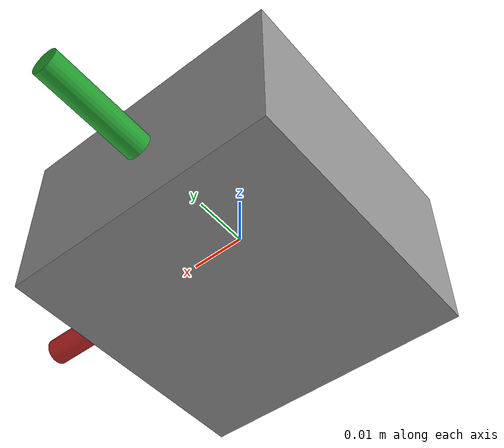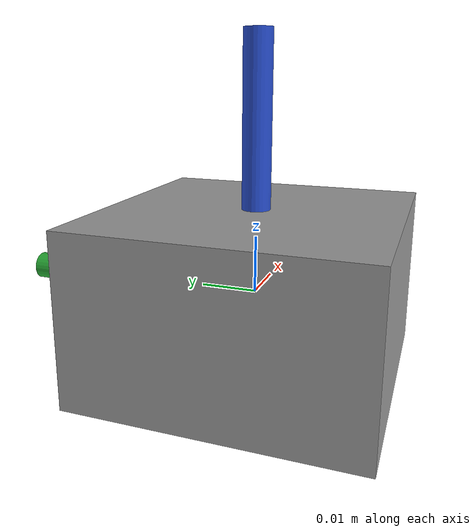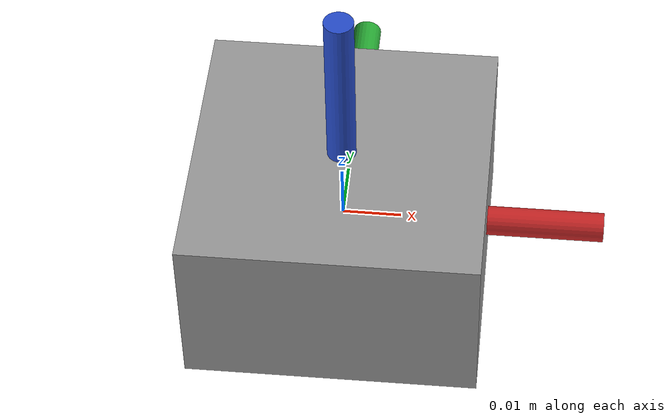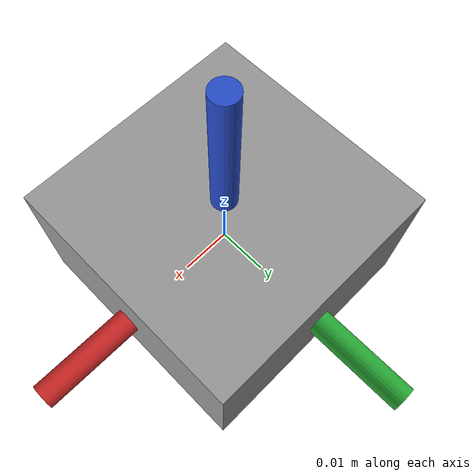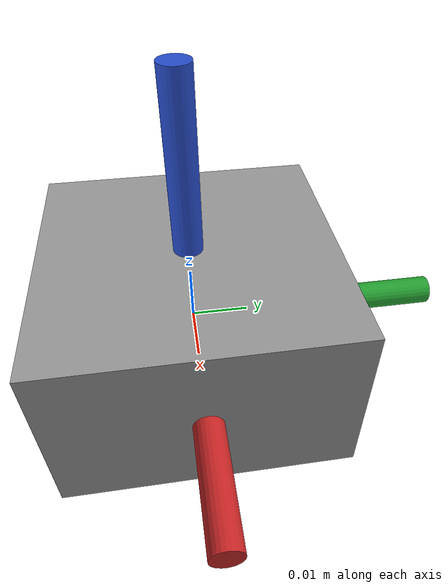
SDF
<?xml version='1.0'?>
<sdf version='1.6'>
  <model name='imubox'>
    <link name='link'>
      <inertial>
        <mass>1</mass>
        <inertia>
          <ixx>0.166667</ixx>
          <ixy>0</ixy>
          <ixz>0</ixz>
          <iyy>0.166667</iyy>
          <iyz>0</iyz>
          <izz>0.166667</izz>
        </inertia>
        <pose frame=''>0 0 0 0 -0 0</pose>
      </inertial>
      <enable_wind>0</enable_wind>
      <kinematic>0</kinematic>
      <pose frame=''>0 0 0 0 -0 0</pose>
      <gravity>0</gravity>
      <visual name='visual'>
        <geometry>
          <box>
            <size>0.05 0.05 0.03</size>
          </box>
        </geometry>
        <material>
          <script>
            <name>Gazebo/Grey</name>
            <uri>file://media/materials/scripts/gazebo.material</uri>
          </script>
          <shader type='vertex'>
            <normal_map>__default__</normal_map>
          </shader>
          <ambient>0.8 0.8 0.8 1</ambient>
          <diffuse>0.7 0.7 0.7 1</diffuse>
          <specular>0.01 0.01 0.01 1</specular>
          <emissive>0 0 0 1</emissive>
        </material>
        <pose frame=''>0 0 0 0 -0 0</pose>
        <transparency>0</transparency>
        <cast_shadows>1</cast_shadows>
      </visual>

    </link>
    <link name='link_0'>
      <inertial>
        <mass>1</mass>
        <inertia>
          <ixx>0.145833</ixx>
          <ixy>0</ixy>
          <ixz>0</ixz>
          <iyy>0.145833</iyy>
          <iyz>0</iyz>
          <izz>0.125</izz>
        </inertia>
        <pose frame=''>0 0 0 0 1.57 -0.01</pose>
      </inertial>
      <pose frame=''>0 0 0.015 0 -0 0</pose>
      <gravity>0</gravity>
      <kinematic>0</kinematic>
      <enable_wind>0</enable_wind>
      <visual name='visual'>
        <pose frame=''>0 0 0 0 -0 0</pose>
        <geometry>
          <cylinder>
            <radius>0.0025</radius>
            <length>0.06</length>
          </cylinder>
        </geometry>
        <material>
          <lighting>1</lighting>
          <script>
            <uri>file://media/materials/scripts/gazebo.material</uri>
            <name>Gazebo/Blue</name>
          </script>
          <shader type='vertex'>
            <normal_map>__default__</normal_map>
          </shader>
          <ambient>0.0 0.0 1.0</ambient>
          <diffuse>0.0 0.0 1.0</diffuse>
          <specular>0.1 0.1 0.1 1.0 1.0</specular>
        </material>
        <transparency>0</transparency>
        <cast_shadows>1</cast_shadows>
      </visual>

    </link>
    <link name='link_0_clone'>
      <inertial>
        <mass>1</mass>
        <inertia>
          <ixx>0.145833</ixx>
          <ixy>0</ixy>
          <ixz>0</ixz>
          <iyy>0.145833</iyy>
          <iyz>0</iyz>
          <izz>0.125</izz>
        </inertia>
        <pose frame=''>0 0 0 0 1.57 0</pose>
      </inertial>
      <pose frame=''>0.015 0 0 0 1.57 0</pose>
      <gravity>0</gravity>
      <kinematic>0</kinematic>
      <enable_wind>0</enable_wind>
      <visual name='visual'>
        <pose frame=''>0 0 0 0 -0 0</pose>
        <geometry>
          <cylinder>
            <radius>0.0025</radius>
            <length>0.06</length>
          </cylinder>
        </geometry>
        <material>
          <lighting>1</lighting>
          <script>
            <uri>file://media/materials/scripts/gazebo.material</uri>
            <name>Gazebo/Red</name>
          </script>
          <shader type='vertex'>
            <normal_map>__default__</normal_map>
          </shader>
          <ambient>1.0 0.0 0.0 1</ambient>
          <diffuse>0.7 0.7 0.7 1</diffuse>
          <specular>0.01 0.01 0.01 1</specular>
          <emissive>0 0 0 1</emissive>
        </material>
        <transparency>0</transparency>
        <cast_shadows>1</cast_shadows>
      </visual>

    </link>
    <link name='link_0_clone_0'>
      <inertial>
        <mass>1</mass>
        <inertia>
          <ixx>0.145833</ixx>
          <ixy>0</ixy>
          <ixz>0</ixz>
          <iyy>0.145833</iyy>
          <iyz>0</iyz>
          <izz>0.125</izz>
        </inertia>
        <pose frame=''>0 0 0 0 1.57 0</pose>
      </inertial>
      <pose frame=''>0 0.015 0 1.57 -0 0</pose>
      <gravity>0</gravity>
      <self_collide>0</self_collide>
      <kinematic>0</kinematic>
      <enable_wind>0</enable_wind>
      <visual name='ModelPreview_9::link_0_clone_0::visual_3'>
        <pose frame=''>0 0 0 0 -0 0</pose>
        <geometry>
          <cylinder>
            <radius>0.0025</radius>
            <length>0.06</length>
          </cylinder>
        </geometry>
        <material>
          <lighting>1</lighting>
          <script>
            <uri>file://media/materials/scripts/gazebo.material</uri>
            <name>Gazebo/Green</name>
          </script>
          <shader type='vertex'>
            <normal_map>__default__</normal_map>
          </shader>
          <ambient>0.0 1.0 0.0 1</ambient>
          <diffuse>0.7 0.7 0.7 1</diffuse>
          <specular>0.01 0.01 0.01 1</specular>
          <emissive>0 0 0 1</emissive>
        </material>
        <transparency>0</transparency>
        <cast_shadows>1</cast_shadows>
      </visual>
      <visual name='ModelPreview_9::link_0_clone_0::visual_1'>
        <pose frame=''>0 0 0 0 -0 0</pose>
        <geometry>
          <cylinder>
            <radius>0.0025</radius>
            <length>0.06</length>
          </cylinder>
        </geometry>
        <material>
          <lighting>1</lighting>
          <script>
            <uri>file://media/materials/scripts/gazebo.material</uri>
            <name>Gazebo/Green</name>
          </script>
          <shader type='vertex'>
            <normal_map>__default__</normal_map>
          </shader>
          <ambient>0.0 1.0 0.0 1</ambient>
          <diffuse>0.7 0.7 0.7 1</diffuse>
          <specular>0.01 0.01 0.01 1</specular>
          <emissive>0 0 0 1</emissive>
        </material>
        <transparency>0</transparency>
        <cast_shadows>1</cast_shadows>
      </visual>
      <visual name='visual'>
        <pose frame=''>0 0 0 0 -0 0</pose>
        <geometry>
          <cylinder>
            <radius>0.0025</radius>
            <length>0.06</length>
          </cylinder>
        </geometry>
        <material>
          <lighting>1</lighting>
          <script>
            <uri>file://media/materials/scripts/gazebo.material</uri>
            <name>Gazebo/Green</name>
          </script>
          <shader type='vertex'>
            <normal_map>__default__</normal_map>
          </shader>
          <ambient>0.0 1.0 0.0 1</ambient>
          <diffuse>0.7 0.7 0.7 1</diffuse>
          <specular>0.01 0.01 0.01 1</specular>
          <emissive>0 0 0 1</emissive>
        </material>
        <transparency>0</transparency>
        <cast_shadows>1</cast_shadows>
      </visual>
      <visual name='ModelPreview_9::link_0_clone_0::visual_2'>
        <pose frame=''>0 0 0 0 -0 0</pose>
        <geometry>
          <cylinder>
            <radius>0.0025</radius>
            <length>0.06</length>
          </cylinder>
        </geometry>
        <material>
          <lighting>1</lighting>
          <script>
            <uri>file://media/materials/scripts/gazebo.material</uri>
            <name>Gazebo/Green</name>
          </script>
          <shader type='vertex'>
            <normal_map>__default__</normal_map>
          </shader>
          <ambient>0.0 1.0 0.0 1</ambient>
          <diffuse>0.7 0.7 0.7 1</diffuse>
          <specular>0.01 0.01 0.01 1</specular>
          <emissive>0 0 0 1</emissive>
        </material>
        <transparency>0</transparency>
        <cast_shadows>1</cast_shadows>
      </visual>

    </link>
    <joint name='x' type='fixed'>
      <parent>link</parent>
      <child>link_0_clone</child>
      <pose frame=''>0 0 0 0 -0 0</pose>
      <physics>
        <ode>
          <limit>
            <cfm>0</cfm>
            <erp>0.2</erp>
          </limit>
          <suspension>
            <cfm>0</cfm>
            <erp>0.2</erp>
          </suspension>
        </ode>
      </physics>
    </joint>
    <joint name='y' type='fixed'>
      <parent>link</parent>
      <child>link_0_clone_0</child>
      <pose frame=''>0 0 0 0 -0 0</pose>
      <physics>
        <ode>
          <limit>
            <cfm>0</cfm>
            <erp>0.2</erp>
          </limit>
          <suspension>
            <cfm>0</cfm>
            <erp>0.2</erp>
          </suspension>
        </ode>
      </physics>
    </joint>
    <joint name='z' type='fixed'>
      <parent>link</parent>
      <child>link_0</child>
      <pose frame=''>0 0 0 0 -0 0</pose>
      <physics>
        <ode>
          <limit>
            <cfm>0</cfm>
            <erp>0.2</erp>
          </limit>
          <suspension>
            <cfm>0</cfm>
            <erp>0.2</erp>
          </suspension>
        </ode>
      </physics>
    </joint>
    <static>1</static>
    <allow_auto_disable>1</allow_auto_disable>
  </model>
</sdf>
